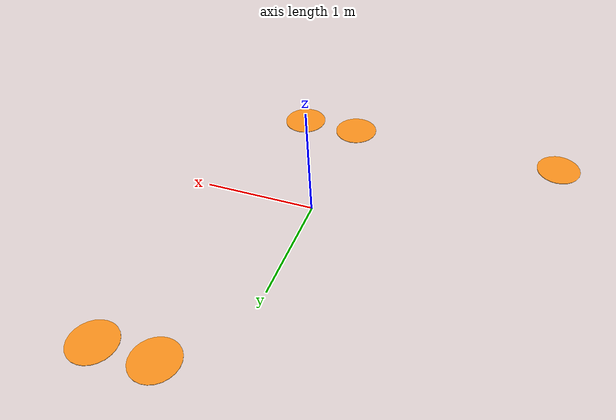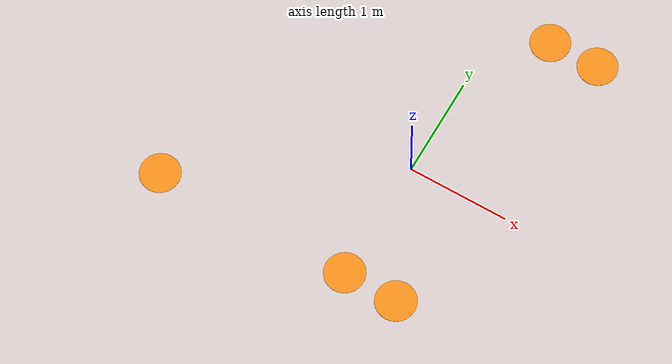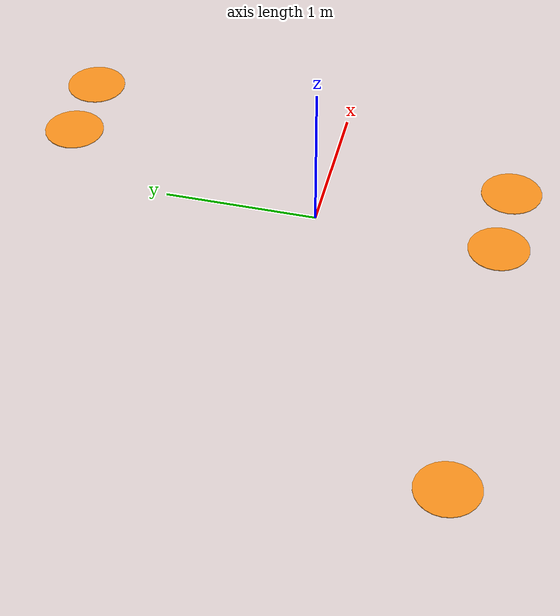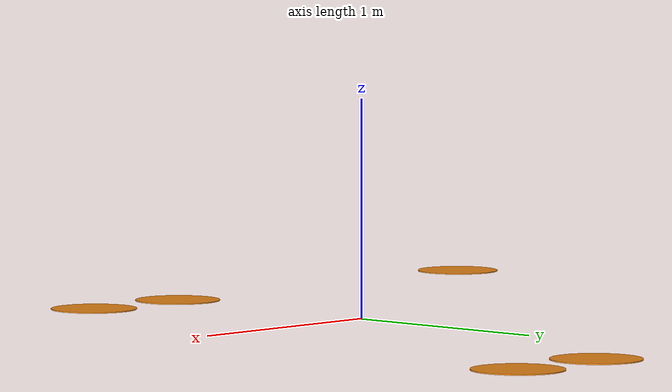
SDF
<?xml version='1.0'?>
<sdf version='1.7'>
  <model name='Zones'>
    <link name='link_0'>
      <inertial>
        <mass>1</mass>
        <inertia>
          <ixx>0.145833</ixx>
          <ixy>0</ixy>
          <ixz>0</ixz>
          <iyy>0.145833</iyy>
          <iyz>0</iyz>
          <izz>0.125</izz>
        </inertia>
        <pose>0 0 0 0 -0 0</pose>
      </inertial>
      <pose>-0.01853 -1.20086 -0 0 -0 0</pose>
      <gravity>1</gravity>
      <self_collide>0</self_collide>
      <kinematic>0</kinematic>
      <enable_wind>0</enable_wind>
      <visual name='visual'>
        <pose>0 0 0 0 -0 0</pose>
        <geometry>
          <cylinder>
            <radius>0.2</radius>
            <length>0.005</length>
          </cylinder>
        </geometry>
        <material>
          <lighting>1</lighting>
          <script>
            <uri>file://media/materials/scripts/gazebo.material</uri>
            <name>Gazebo/Orange</name>
          </script>
          <shader type='pixel'>
            <normal_map>__default__</normal_map>
          </shader>
          <ambient>0.255 0.14 0 1</ambient>
          <diffuse>0.255 0.14 0 1</diffuse>
          <specular>0.255 0.14 0 1</specular>
          <emissive>0.255 0.14 0 1</emissive>
        </material>
        <transparency>0</transparency>
        <cast_shadows>1</cast_shadows>
      </visual>
      <collision name='collision'>
        <laser_retro>0</laser_retro>
        <max_contacts>10</max_contacts>
        <pose>0 0 0 0 -0 0</pose>
        <geometry>
          <cylinder>
            <radius>0.2</radius>
            <length>0.005</length>
          </cylinder>
        </geometry>
        <surface>
          <friction>
            <ode>
              <mu>1</mu>
              <mu2>1</mu2>
              <fdir1>0 0 0</fdir1>
              <slip1>0</slip1>
              <slip2>0</slip2>
            </ode>
            <torsional>
              <coefficient>1</coefficient>
              <patch_radius>0</patch_radius>
              <surface_radius>0</surface_radius>
              <use_patch_radius>1</use_patch_radius>
              <ode>
                <slip>0</slip>
              </ode>
            </torsional>
          </friction>
          <bounce>
            <restitution_coefficient>0</restitution_coefficient>
            <threshold>1e+06</threshold>
          </bounce>
          <contact>
            <collide_without_contact>0</collide_without_contact>
            <collide_without_contact_bitmask>1</collide_without_contact_bitmask>
            <collide_bitmask>1</collide_bitmask>
            <ode>
              <soft_cfm>0</soft_cfm>
              <soft_erp>0.2</soft_erp>
              <kp>1e+13</kp>
              <kd>1</kd>
              <max_vel>0.01</max_vel>
              <min_depth>0</min_depth>
            </ode>
            <bullet>
              <split_impulse>1</split_impulse>
              <split_impulse_penetration_threshold>-0.01</split_impulse_penetration_threshold>
              <soft_cfm>0</soft_cfm>
              <soft_erp>0.2</soft_erp>
              <kp>1e+13</kp>
              <kd>1</kd>
            </bullet>
          </contact>
        </surface>
      </collision>
    </link>
    <link name='link_0_clone'>
      <inertial>
        <mass>1</mass>
        <inertia>
          <ixx>0.145833</ixx>
          <ixy>0</ixy>
          <ixz>0</ixz>
          <iyy>0.145833</iyy>
          <iyz>0</iyz>
          <izz>0.125</izz>
        </inertia>
        <pose>0 0 0 0 -0 0</pose>
      </inertial>
      <pose>0.525973 -1.20497 0 0 -0 0</pose>
      <gravity>1</gravity>
      <self_collide>0</self_collide>
      <kinematic>0</kinematic>
      <enable_wind>0</enable_wind>
      <visual name='visual'>
        <pose>0 0 0 0 -0 0</pose>
        <geometry>
          <cylinder>
            <radius>0.2</radius>
            <length>0.005</length>
          </cylinder>
        </geometry>
        <material>
          <lighting>1</lighting>
          <script>
            <uri>file://media/materials/scripts/gazebo.material</uri>
            <name>Gazebo/Orange</name>
          </script>
          <shader type='pixel'>
            <normal_map>__default__</normal_map>
          </shader>
          <ambient>0.255 0.14 0 1</ambient>
          <diffuse>0.255 0.14 0 1</diffuse>
          <specular>0.255 0.14 0 1</specular>
          <emissive>0.255 0.14 0 1</emissive>
        </material>
        <transparency>0</transparency>
        <cast_shadows>1</cast_shadows>
      </visual>
      <collision name='collision'>
        <laser_retro>0</laser_retro>
        <max_contacts>10</max_contacts>
        <pose>0 0 0 0 -0 0</pose>
        <geometry>
          <cylinder>
            <radius>0.2</radius>
            <length>0.005</length>
          </cylinder>
        </geometry>
        <surface>
          <friction>
            <ode>
              <mu>1</mu>
              <mu2>1</mu2>
              <fdir1>0 0 0</fdir1>
              <slip1>0</slip1>
              <slip2>0</slip2>
            </ode>
            <torsional>
              <coefficient>1</coefficient>
              <patch_radius>0</patch_radius>
              <surface_radius>0</surface_radius>
              <use_patch_radius>1</use_patch_radius>
              <ode>
                <slip>0</slip>
              </ode>
            </torsional>
          </friction>
          <bounce>
            <restitution_coefficient>0</restitution_coefficient>
            <threshold>1e+06</threshold>
          </bounce>
          <contact>
            <collide_without_contact>0</collide_without_contact>
            <collide_without_contact_bitmask>1</collide_without_contact_bitmask>
            <collide_bitmask>1</collide_bitmask>
            <ode>
              <soft_cfm>0</soft_cfm>
              <soft_erp>0.2</soft_erp>
              <kp>1e+13</kp>
              <kd>1</kd>
              <max_vel>0.01</max_vel>
              <min_depth>0</min_depth>
            </ode>
            <bullet>
              <split_impulse>1</split_impulse>
              <split_impulse_penetration_threshold>-0.01</split_impulse_penetration_threshold>
              <soft_cfm>0</soft_cfm>
              <soft_erp>0.2</soft_erp>
              <kp>1e+13</kp>
              <kd>1</kd>
            </bullet>
          </contact>
        </surface>
      </collision>
    </link>
    <link name='link_0_clone_0'>
      <inertial>
        <mass>1</mass>
        <inertia>
          <ixx>0.145833</ixx>
          <ixy>0</ixy>
          <ixz>0</ixz>
          <iyy>0.145833</iyy>
          <iyz>0</iyz>
          <izz>0.125</izz>
        </inertia>
        <pose>0 0 0 0 -0 0</pose>
      </inertial>
      <pose>0.49862 1.80393 0 0 -0 0</pose>
      <gravity>1</gravity>
      <self_collide>0</self_collide>
      <kinematic>0</kinematic>
      <enable_wind>0</enable_wind>
      <visual name='visual'>
        <pose>0 0 0 0 -0 0</pose>
        <geometry>
          <cylinder>
            <radius>0.2</radius>
            <length>0.005</length>
          </cylinder>
        </geometry>
        <material>
          <lighting>1</lighting>
          <script>
            <uri>file://media/materials/scripts/gazebo.material</uri>
            <name>Gazebo/Orange</name>
          </script>
          <shader type='pixel'>
            <normal_map>__default__</normal_map>
          </shader>
          <ambient>0.255 0.14 0 1</ambient>
          <diffuse>0.255 0.14 0 1</diffuse>
          <specular>0.255 0.14 0 1</specular>
          <emissive>0.255 0.14 0 1</emissive>
        </material>
        <transparency>0</transparency>
        <cast_shadows>1</cast_shadows>
      </visual>
      <collision name='collision'>
        <laser_retro>0</laser_retro>
        <max_contacts>10</max_contacts>
        <pose>0 0 0 0 -0 0</pose>
        <geometry>
          <cylinder>
            <radius>0.2</radius>
            <length>0.005</length>
          </cylinder>
        </geometry>
        <surface>
          <friction>
            <ode>
              <mu>1</mu>
              <mu2>1</mu2>
              <fdir1>0 0 0</fdir1>
              <slip1>0</slip1>
              <slip2>0</slip2>
            </ode>
            <torsional>
              <coefficient>1</coefficient>
              <patch_radius>0</patch_radius>
              <surface_radius>0</surface_radius>
              <use_patch_radius>1</use_patch_radius>
              <ode>
                <slip>0</slip>
              </ode>
            </torsional>
          </friction>
          <bounce>
            <restitution_coefficient>0</restitution_coefficient>
            <threshold>1e+06</threshold>
          </bounce>
          <contact>
            <collide_without_contact>0</collide_without_contact>
            <collide_without_contact_bitmask>1</collide_without_contact_bitmask>
            <collide_bitmask>1</collide_bitmask>
            <ode>
              <soft_cfm>0</soft_cfm>
              <soft_erp>0.2</soft_erp>
              <kp>1e+13</kp>
              <kd>1</kd>
              <max_vel>0.01</max_vel>
              <min_depth>0</min_depth>
            </ode>
            <bullet>
              <split_impulse>1</split_impulse>
              <split_impulse_penetration_threshold>-0.01</split_impulse_penetration_threshold>
              <soft_cfm>0</soft_cfm>
              <soft_erp>0.2</soft_erp>
              <kp>1e+13</kp>
              <kd>1</kd>
            </bullet>
          </contact>
        </surface>
      </collision>
    </link>
    <link name='link_0_clone_1'>
      <inertial>
        <mass>1</mass>
        <inertia>
          <ixx>0.145833</ixx>
          <ixy>0</ixy>
          <ixz>0</ixz>
          <iyy>0.145833</iyy>
          <iyz>0</iyz>
          <izz>0.125</izz>
        </inertia>
        <pose>0 0 0 0 -0 0</pose>
      </inertial>
      <pose>1.00732 1.80838 0 0 -0 0</pose>
      <gravity>1</gravity>
      <self_collide>0</self_collide>
      <kinematic>0</kinematic>
      <enable_wind>0</enable_wind>
      <visual name='visual'>
        <pose>0 0 0 0 -0 0</pose>
        <geometry>
          <cylinder>
            <radius>0.2</radius>
            <length>0.005</length>
          </cylinder>
        </geometry>
        <material>
          <lighting>1</lighting>
          <script>
            <uri>file://media/materials/scripts/gazebo.material</uri>
            <name>Gazebo/Orange</name>
          </script>
          <shader type='pixel'>
            <normal_map>__default__</normal_map>
          </shader>
          <ambient>0.1 0.149 0.237 1</ambient>
          <diffuse>0.1 0.149 0.237 1</diffuse>
          <specular>0.1 0.149 0.237 1</specular>
          <emissive>0.1 0.149 0.237 1</emissive>
        </material>
        <transparency>0</transparency>
        <cast_shadows>1</cast_shadows>
      </visual>
      <collision name='collision'>
        <laser_retro>0</laser_retro>
        <max_contacts>10</max_contacts>
        <pose>0 0 0 0 -0 0</pose>
        <geometry>
          <cylinder>
            <radius>0.2</radius>
            <length>0.005</length>
          </cylinder>
        </geometry>
        <surface>
          <friction>
            <ode>
              <mu>1</mu>
              <mu2>1</mu2>
              <fdir1>0 0 0</fdir1>
              <slip1>0</slip1>
              <slip2>0</slip2>
            </ode>
            <torsional>
              <coefficient>1</coefficient>
              <patch_radius>0</patch_radius>
              <surface_radius>0</surface_radius>
              <use_patch_radius>1</use_patch_radius>
              <ode>
                <slip>0</slip>
              </ode>
            </torsional>
          </friction>
          <bounce>
            <restitution_coefficient>0</restitution_coefficient>
            <threshold>1e+06</threshold>
          </bounce>
          <contact>
            <collide_without_contact>0</collide_without_contact>
            <collide_without_contact_bitmask>1</collide_without_contact_bitmask>
            <collide_bitmask>1</collide_bitmask>
            <ode>
              <soft_cfm>0</soft_cfm>
              <soft_erp>0.2</soft_erp>
              <kp>1e+13</kp>
              <kd>1</kd>
              <max_vel>0.01</max_vel>
              <min_depth>0</min_depth>
            </ode>
            <bullet>
              <split_impulse>1</split_impulse>
              <split_impulse_penetration_threshold>-0.01</split_impulse_penetration_threshold>
              <soft_cfm>0</soft_cfm>
              <soft_erp>0.2</soft_erp>
              <kp>1e+13</kp>
              <kd>1</kd>
            </bullet>
          </contact>
        </surface>
      </collision>
    </link>
    <link name='link_0_clone_2'>
      <inertial>
        <mass>1</mass>
        <inertia>
          <ixx>0.145833</ixx>
          <ixy>0</ixy>
          <ixz>0</ixz>
          <iyy>0.145833</iyy>
          <iyz>0</iyz>
          <izz>0.125</izz>
        </inertia>
        <pose>0 0 0 0 -0 0</pose>
      </inertial>
      <pose>-2.01339 -1.20646 0 0 -0 0</pose>
      <gravity>1</gravity>
      <self_collide>0</self_collide>
      <kinematic>0</kinematic>
      <enable_wind>0</enable_wind>
      <visual name='visual'>
        <pose>0 0 0 0 -0 0</pose>
        <geometry>
          <cylinder>
            <radius>0.2</radius>
            <length>0.005</length>
          </cylinder>
        </geometry>
        <material>
          <lighting>1</lighting>
          <script>
            <uri>file://media/materials/scripts/gazebo.material</uri>
            <name>Gazebo/Orange</name>
          </script>
          <shader type='pixel'>
            <normal_map>__default__</normal_map>
          </shader>
          <ambient>0.06 0.179 0.113 1</ambient>
          <diffuse>0.06 0.179 0.113 1</diffuse>
          <specular>0.06 0.179 0.113 1</specular>
          <emissive>0.06 0.179 0.113 1</emissive>
        </material>
        <transparency>0</transparency>
        <cast_shadows>1</cast_shadows>
      </visual>
      <collision name='collision'>
        <laser_retro>0</laser_retro>
        <max_contacts>10</max_contacts>
        <pose>0 0 0 0 -0 0</pose>
        <geometry>
          <cylinder>
            <radius>0.2</radius>
            <length>0.005</length>
          </cylinder>
        </geometry>
        <surface>
          <friction>
            <ode>
              <mu>1</mu>
              <mu2>1</mu2>
              <fdir1>0 0 0</fdir1>
              <slip1>0</slip1>
              <slip2>0</slip2>
            </ode>
            <torsional>
              <coefficient>1</coefficient>
              <patch_radius>0</patch_radius>
              <surface_radius>0</surface_radius>
              <use_patch_radius>1</use_patch_radius>
              <ode>
                <slip>0</slip>
              </ode>
            </torsional>
          </friction>
          <bounce>
            <restitution_coefficient>0</restitution_coefficient>
            <threshold>1e+06</threshold>
          </bounce>
          <contact>
            <collide_without_contact>0</collide_without_contact>
            <collide_without_contact_bitmask>1</collide_without_contact_bitmask>
            <collide_bitmask>1</collide_bitmask>
            <ode>
              <soft_cfm>0</soft_cfm>
              <soft_erp>0.2</soft_erp>
              <kp>1e+13</kp>
              <kd>1</kd>
              <max_vel>0.01</max_vel>
              <min_depth>0</min_depth>
            </ode>
            <bullet>
              <split_impulse>1</split_impulse>
              <split_impulse_penetration_threshold>-0.01</split_impulse_penetration_threshold>
              <soft_cfm>0</soft_cfm>
              <soft_erp>0.2</soft_erp>
              <kp>1e+13</kp>
              <kd>1</kd>
            </bullet>
          </contact>
        </surface>
      </collision>
    </link>
    <static>0</static>
    <allow_auto_disable>1</allow_auto_disable>
  </model>
</sdf>
